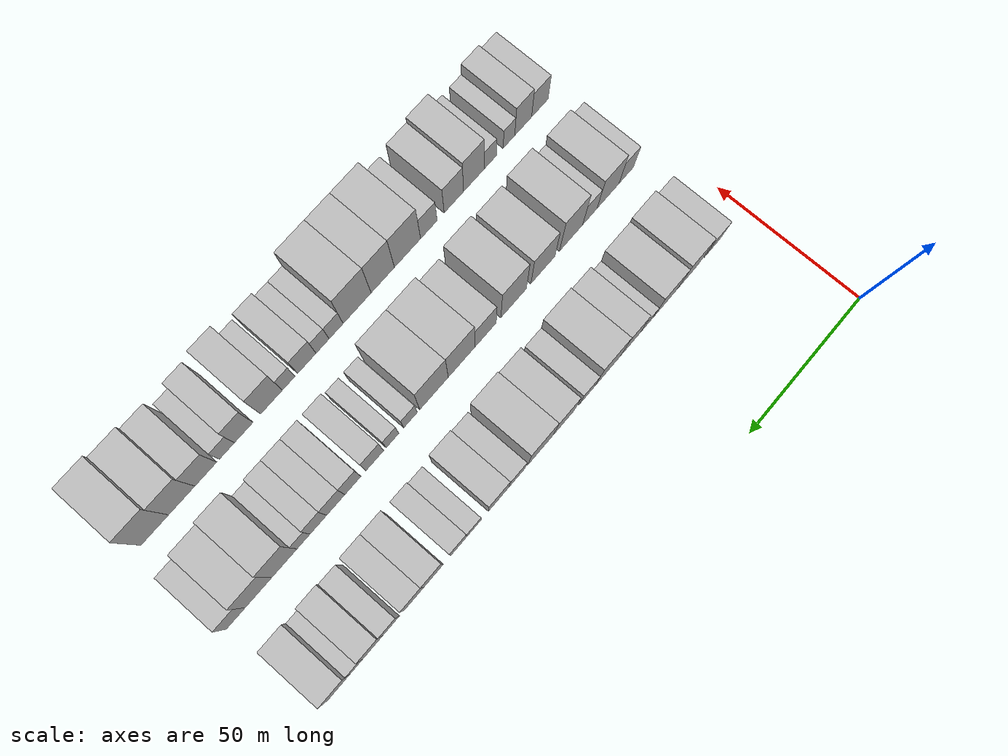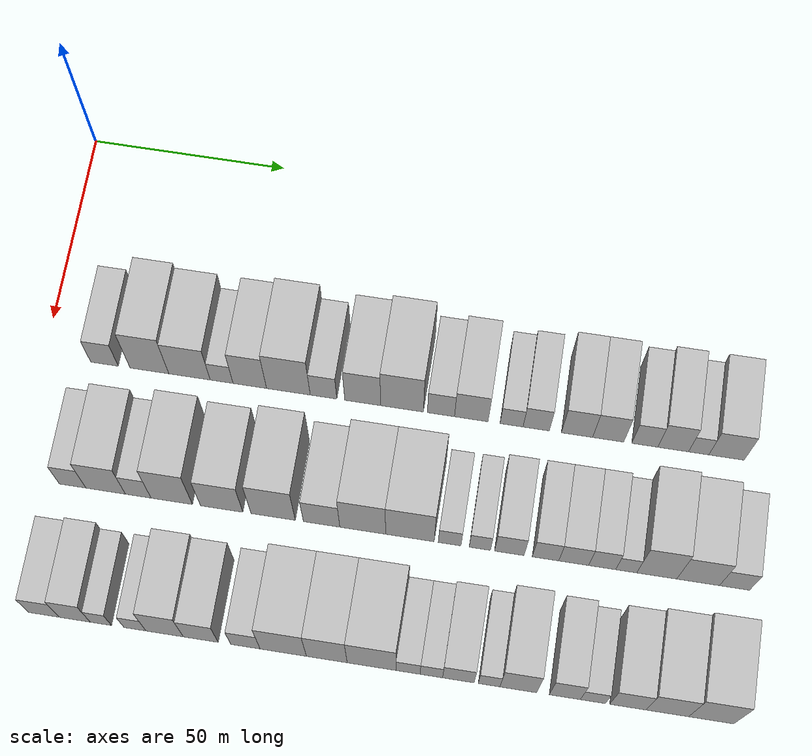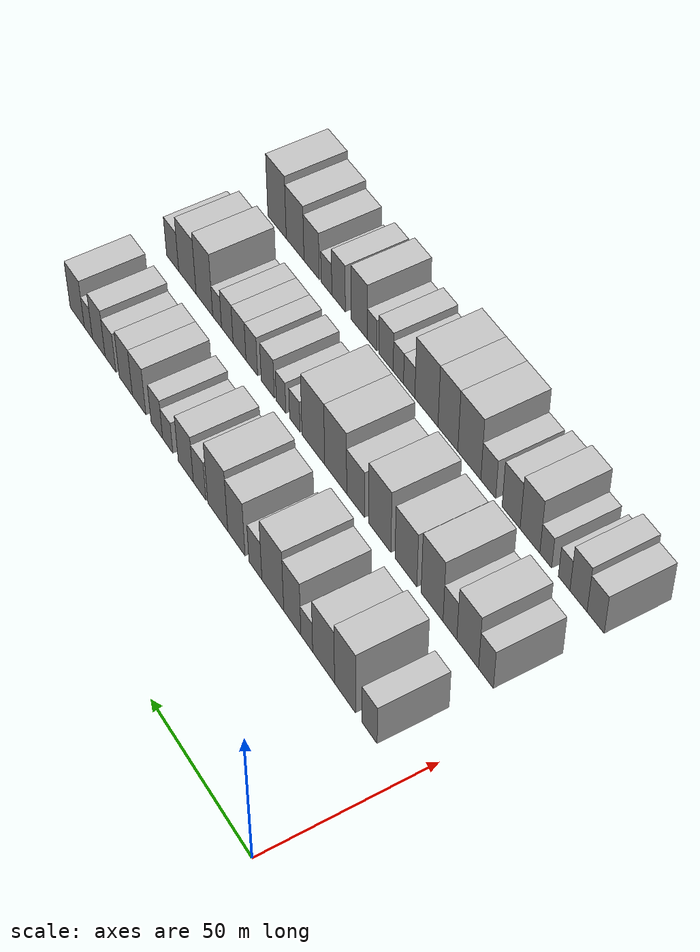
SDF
<sdf version="1.6">
 <world name="default">
  <model name="building_39">
   <static>1</static>
   <pose>50.0000 15.2704 0 0.000000 0.000000 0.000000</pose>
   <link name="link">
    <pose>0 0 7.50 0 0 0</pose>
    <collision name="collision"><geometry><box><size>20.0000 7.0027 15.0000</size></box></geometry></collision>
    <visual name="visual">
     <cast_shadows>0</cast_shadows>
     <geometry><box><size>20.0000 7.0027 15.0000</size></box></geometry>
     <material>
      <script>
       <uri>model://HANNAS_wall/materials/scripts</uri>
       <uri>model://HANNAS_wall/materials/textures</uri>
       <name>vrc/HANNAS_wall</name>
      </script>
     </material>
    </visual>
   </link>
  </model>
  <model name="building_40">
   <static>1</static>
   <pose>50.0000 26.6961 0 0.000000 0.000000 0.000000</pose>
   <link name="link">
    <pose>0 0 12.00 0 0 0</pose>
    <collision name="collision"><geometry><box><size>20.0000 9.8487 24.0000</size></box></geometry></collision>
    <visual name="visual">
     <cast_shadows>0</cast_shadows>
     <geometry><box><size>20.0000 9.8487 24.0000</size></box></geometry>
     <material>
      <script>
       <uri>model://HANNAS_wall/materials/scripts</uri>
       <uri>model://HANNAS_wall/materials/textures</uri>
       <name>vrc/HANNAS_wall</name>
      </script>
     </material>
    </visual>
   </link>
  </model>
  <model name="building_41">
   <static>1</static>
   <pose>50.0000 36.8690 0 0.000000 0.000000 0.000000</pose>
   <link name="link">
    <pose>0 0 10.50 0 0 0</pose>
    <collision name="collision"><geometry><box><size>20.0000 10.4971 21.0000</size></box></geometry></collision>
    <visual name="visual">
     <cast_shadows>0</cast_shadows>
     <geometry><box><size>20.0000 10.4971 21.0000</size></box></geometry>
     <material>
      <script>
       <uri>model://HANNAS_wall/materials/scripts</uri>
       <uri>model://HANNAS_wall/materials/textures</uri>
       <name>vrc/HANNAS_wall</name>
      </script>
     </material>
    </visual>
   </link>
  </model>
  <model name="building_42">
   <static>1</static>
   <pose>50.0000 45.0022 0 0.000000 0.000000 0.000000</pose>
   <link name="link">
    <pose>0 0 6.00 0 0 0</pose>
    <collision name="collision"><geometry><box><size>20.0000 5.7693 12.0000</size></box></geometry></collision>
    <visual name="visual">
     <cast_shadows>0</cast_shadows>
     <geometry><box><size>20.0000 5.7693 12.0000</size></box></geometry>
     <material>
      <script>
       <uri>model://HANNAS_wall/materials/scripts</uri>
       <uri>model://HANNAS_wall/materials/textures</uri>
       <name>vrc/HANNAS_wall</name>
      </script>
     </material>
    </visual>
   </link>
  </model>
  <model name="building_43">
   <static>1</static>
   <pose>50.0000 52.1193 0 0.000000 0.000000 0.000000</pose>
   <link name="link">
    <pose>0 0 10.50 0 0 0</pose>
    <collision name="collision"><geometry><box><size>20.0000 8.4649 21.0000</size></box></geometry></collision>
    <visual name="visual">
     <cast_shadows>0</cast_shadows>
     <geometry><box><size>20.0000 8.4649 21.0000</size></box></geometry>
     <material>
      <script>
       <uri>model://HANNAS_wall/materials/scripts</uri>
       <uri>model://HANNAS_wall/materials/textures</uri>
       <name>vrc/HANNAS_wall</name>
      </script>
     </material>
    </visual>
   </link>
  </model>
  <model name="building_44">
   <static>1</static>
   <pose>50.0000 61.8572 0 0.000000 0.000000 0.000000</pose>
   <link name="link">
    <pose>0 0 12.00 0 0 0</pose>
    <collision name="collision"><geometry><box><size>20.0000 11.0109 24.0000</size></box></geometry></collision>
    <visual name="visual">
     <cast_shadows>0</cast_shadows>
     <geometry><box><size>20.0000 11.0109 24.0000</size></box></geometry>
     <material>
      <script>
       <uri>model://HANNAS_wall/materials/scripts</uri>
       <uri>model://HANNAS_wall/materials/textures</uri>
       <name>vrc/HANNAS_wall</name>
      </script>
     </material>
    </visual>
   </link>
  </model>
  <model name="building_45">
   <static>1</static>
   <pose>50.0000 70.7023 0 0.000000 0.000000 0.000000</pose>
   <link name="link">
    <pose>0 0 7.50 0 0 0</pose>
    <collision name="collision"><geometry><box><size>20.0000 6.6793 15.0000</size></box></geometry></collision>
    <visual name="visual">
     <cast_shadows>0</cast_shadows>
     <geometry><box><size>20.0000 6.6793 15.0000</size></box></geometry>
     <material>
      <script>
       <uri>model://HANNAS_wall/materials/scripts</uri>
       <uri>model://HANNAS_wall/materials/textures</uri>
       <name>vrc/HANNAS_wall</name>
      </script>
     </material>
    </visual>
   </link>
  </model>
  <model name="building_46">
   <static>1</static>
   <pose>50.0000 80.5464 0 0.000000 0.000000 0.000000</pose>
   <link name="link">
    <pose>0 0 10.50 0 0 0</pose>
    <collision name="collision"><geometry><box><size>20.0000 9.0089 21.0000</size></box></geometry></collision>
    <visual name="visual">
     <cast_shadows>0</cast_shadows>
     <geometry><box><size>20.0000 9.0089 21.0000</size></box></geometry>
     <material>
      <script>
       <uri>model://HANNAS_wall/materials/scripts</uri>
       <uri>model://HANNAS_wall/materials/textures</uri>
       <name>vrc/HANNAS_wall</name>
      </script>
     </material>
    </visual>
   </link>
  </model>
  <model name="building_47">
   <static>1</static>
   <pose>50.0000 90.3913 0 0.000000 0.000000 0.000000</pose>
   <link name="link">
    <pose>0 0 12.00 0 0 0</pose>
    <collision name="collision"><geometry><box><size>20.0000 10.6811 24.0000</size></box></geometry></collision>
    <visual name="visual">
     <cast_shadows>0</cast_shadows>
     <geometry><box><size>20.0000 10.6811 24.0000</size></box></geometry>
     <material>
      <script>
       <uri>model://HANNAS_wall/materials/scripts</uri>
       <uri>model://HANNAS_wall/materials/textures</uri>
       <name>vrc/HANNAS_wall</name>
      </script>
     </material>
    </visual>
   </link>
  </model>
  <model name="building_48">
   <static>1</static>
   <pose>50.0000 100.1122 0 0.000000 0.000000 0.000000</pose>
   <link name="link">
    <pose>0 0 7.50 0 0 0</pose>
    <collision name="collision"><geometry><box><size>20.0000 6.7606 15.0000</size></box></geometry></collision>
    <visual name="visual">
     <cast_shadows>0</cast_shadows>
     <geometry><box><size>20.0000 6.7606 15.0000</size></box></geometry>
     <material>
      <script>
       <uri>model://HANNAS_wall/materials/scripts</uri>
       <uri>model://HANNAS_wall/materials/textures</uri>
       <name>vrc/HANNAS_wall</name>
      </script>
     </material>
    </visual>
   </link>
  </model>
  <model name="building_49">
   <static>1</static>
   <pose>50.0000 107.6682 0 0.000000 0.000000 0.000000</pose>
   <link name="link">
    <pose>0 0 9.00 0 0 0</pose>
    <collision name="collision"><geometry><box><size>20.0000 8.3515 18.0000</size></box></geometry></collision>
    <visual name="visual">
     <cast_shadows>0</cast_shadows>
     <geometry><box><size>20.0000 8.3515 18.0000</size></box></geometry>
     <material>
      <script>
       <uri>model://HANNAS_wall/materials/scripts</uri>
       <uri>model://HANNAS_wall/materials/textures</uri>
       <name>vrc/HANNAS_wall</name>
      </script>
     </material>
    </visual>
   </link>
  </model>
  <model name="building_50">
   <static>1</static>
   <pose>50.0000 117.6989 0 0.000000 0.000000 0.000000</pose>
   <link name="link">
    <pose>0 0 6.00 0 0 0</pose>
    <collision name="collision"><geometry><box><size>20.0000 5.7099 12.0000</size></box></geometry></collision>
    <visual name="visual">
     <cast_shadows>0</cast_shadows>
     <geometry><box><size>20.0000 5.7099 12.0000</size></box></geometry>
     <material>
      <script>
       <uri>model://HANNAS_wall/materials/scripts</uri>
       <uri>model://HANNAS_wall/materials/textures</uri>
       <name>vrc/HANNAS_wall</name>
      </script>
     </material>
    </visual>
   </link>
  </model>
  <model name="building_51">
   <static>1</static>
   <pose>50.0000 123.8162 0 0.000000 0.000000 0.000000</pose>
   <link name="link">
    <pose>0 0 7.50 0 0 0</pose>
    <collision name="collision"><geometry><box><size>20.0000 6.5247 15.0000</size></box></geometry></collision>
    <visual name="visual">
     <cast_shadows>0</cast_shadows>
     <geometry><box><size>20.0000 6.5247 15.0000</size></box></geometry>
     <material>
      <script>
       <uri>model://HANNAS_wall/materials/scripts</uri>
       <uri>model://HANNAS_wall/materials/textures</uri>
       <name>vrc/HANNAS_wall</name>
      </script>
     </material>
    </visual>
   </link>
  </model>
  <model name="building_52">
   <static>1</static>
   <pose>50.0000 133.9477 0 0.000000 0.000000 0.000000</pose>
   <link name="link">
    <pose>0 0 9.00 0 0 0</pose>
    <collision name="collision"><geometry><box><size>20.0000 7.7381 18.0000</size></box></geometry></collision>
    <visual name="visual">
     <cast_shadows>0</cast_shadows>
     <geometry><box><size>20.0000 7.7381 18.0000</size></box></geometry>
     <material>
      <script>
       <uri>model://HANNAS_wall/materials/scripts</uri>
       <uri>model://HANNAS_wall/materials/textures</uri>
       <name>vrc/HANNAS_wall</name>
      </script>
     </material>
    </visual>
   </link>
  </model>
  <model name="building_53">
   <static>1</static>
   <pose>50.0000 141.6586 0 0.000000 0.000000 0.000000</pose>
   <link name="link">
    <pose>0 0 9.00 0 0 0</pose>
    <collision name="collision"><geometry><box><size>20.0000 7.6837 18.0000</size></box></geometry></collision>
    <visual name="visual">
     <cast_shadows>0</cast_shadows>
     <geometry><box><size>20.0000 7.6837 18.0000</size></box></geometry>
     <material>
      <script>
       <uri>model://HANNAS_wall/materials/scripts</uri>
       <uri>model://HANNAS_wall/materials/textures</uri>
       <name>vrc/HANNAS_wall</name>
      </script>
     </material>
    </visual>
   </link>
  </model>
  <model name="building_54">
   <static>1</static>
   <pose>50.0000 150.6986 0 0.000000 0.000000 0.000000</pose>
   <link name="link">
    <pose>0 0 7.50 0 0 0</pose>
    <collision name="collision"><geometry><box><size>20.0000 6.3965 15.0000</size></box></geometry></collision>
    <visual name="visual">
     <cast_shadows>0</cast_shadows>
     <geometry><box><size>20.0000 6.3965 15.0000</size></box></geometry>
     <material>
      <script>
       <uri>model://HANNAS_wall/materials/scripts</uri>
       <uri>model://HANNAS_wall/materials/textures</uri>
       <name>vrc/HANNAS_wall</name>
      </script>
     </material>
    </visual>
   </link>
  </model>
  <model name="building_55">
   <static>1</static>
   <pose>50.0000 157.6877 0 0.000000 0.000000 0.000000</pose>
   <link name="link">
    <pose>0 0 9.00 0 0 0</pose>
    <collision name="collision"><geometry><box><size>20.0000 7.5816 18.0000</size></box></geometry></collision>
    <visual name="visual">
     <cast_shadows>0</cast_shadows>
     <geometry><box><size>20.0000 7.5816 18.0000</size></box></geometry>
     <material>
      <script>
       <uri>model://HANNAS_wall/materials/scripts</uri>
       <uri>model://HANNAS_wall/materials/textures</uri>
       <name>vrc/HANNAS_wall</name>
      </script>
     </material>
    </visual>
   </link>
  </model>
  <model name="building_56">
   <static>1</static>
   <pose>50.0000 163.9735 0 0.000000 0.000000 0.000000</pose>
   <link name="link">
    <pose>0 0 6.00 0 0 0</pose>
    <collision name="collision"><geometry><box><size>20.0000 4.9901 12.0000</size></box></geometry></collision>
    <visual name="visual">
     <cast_shadows>0</cast_shadows>
     <geometry><box><size>20.0000 4.9901 12.0000</size></box></geometry>
     <material>
      <script>
       <uri>model://HANNAS_wall/materials/scripts</uri>
       <uri>model://HANNAS_wall/materials/textures</uri>
       <name>vrc/HANNAS_wall</name>
      </script>
     </material>
    </visual>
   </link>
  </model>
  <model name="building_57">
   <static>1</static>
   <pose>50.0000 170.8108 0 0.000000 0.000000 0.000000</pose>
   <link name="link">
    <pose>0 0 9.00 0 0 0</pose>
    <collision name="collision"><geometry><box><size>20.0000 8.6844 18.0000</size></box></geometry></collision>
    <visual name="visual">
     <cast_shadows>0</cast_shadows>
     <geometry><box><size>20.0000 8.6844 18.0000</size></box></geometry>
     <material>
      <script>
       <uri>model://HANNAS_wall/materials/scripts</uri>
       <uri>model://HANNAS_wall/materials/textures</uri>
       <name>vrc/HANNAS_wall</name>
      </script>
     </material>
    </visual>
   </link>
  </model>
  <model name="building_111">
   <static>1</static>
   <pose>82.0000 14.2327 0 0.000000 0.000000 0.000000</pose>
   <link name="link">
    <pose>0 0 7.50 0 0 0</pose>
    <collision name="collision"><geometry><box><size>20.0000 6.5961 15.0000</size></box></geometry></collision>
    <visual name="visual">
     <cast_shadows>0</cast_shadows>
     <geometry><box><size>20.0000 6.5961 15.0000</size></box></geometry>
     <material>
      <script>
       <uri>model://HANNAS_wall/materials/scripts</uri>
       <uri>model://HANNAS_wall/materials/textures</uri>
       <name>vrc/HANNAS_wall</name>
      </script>
     </material>
    </visual>
   </link>
  </model>
  <model name="building_112">
   <static>1</static>
   <pose>82.0000 22.4456 0 0.000000 0.000000 0.000000</pose>
   <link name="link">
    <pose>0 0 10.50 0 0 0</pose>
    <collision name="collision"><geometry><box><size>20.0000 9.8298 21.0000</size></box></geometry></collision>
    <visual name="visual">
     <cast_shadows>0</cast_shadows>
     <geometry><box><size>20.0000 9.8298 21.0000</size></box></geometry>
     <material>
      <script>
       <uri>model://HANNAS_wall/materials/scripts</uri>
       <uri>model://HANNAS_wall/materials/textures</uri>
       <name>vrc/HANNAS_wall</name>
      </script>
     </material>
    </visual>
   </link>
  </model>
  <model name="building_113">
   <static>1</static>
   <pose>82.0000 30.5414 0 0.000000 0.000000 0.000000</pose>
   <link name="link">
    <pose>0 0 7.50 0 0 0</pose>
    <collision name="collision"><geometry><box><size>20.0000 6.3617 15.0000</size></box></geometry></collision>
    <visual name="visual">
     <cast_shadows>0</cast_shadows>
     <geometry><box><size>20.0000 6.3617 15.0000</size></box></geometry>
     <material>
      <script>
       <uri>model://HANNAS_wall/materials/scripts</uri>
       <uri>model://HANNAS_wall/materials/textures</uri>
       <name>vrc/HANNAS_wall</name>
      </script>
     </material>
    </visual>
   </link>
  </model>
  <model name="building_114">
   <static>1</static>
   <pose>82.0000 38.8368 0 0.000000 0.000000 0.000000</pose>
   <link name="link">
    <pose>0 0 12.00 0 0 0</pose>
    <collision name="collision"><geometry><box><size>20.0000 10.2292 24.0000</size></box></geometry></collision>
    <visual name="visual">
     <cast_shadows>0</cast_shadows>
     <geometry><box><size>20.0000 10.2292 24.0000</size></box></geometry>
     <material>
      <script>
       <uri>model://HANNAS_wall/materials/scripts</uri>
       <uri>model://HANNAS_wall/materials/textures</uri>
       <name>vrc/HANNAS_wall</name>
      </script>
     </material>
    </visual>
   </link>
  </model>
  <model name="building_115">
   <static>1</static>
   <pose>82.0000 51.1650 0 0.000000 0.000000 0.000000</pose>
   <link name="link">
    <pose>0 0 10.50 0 0 0</pose>
    <collision name="collision"><geometry><box><size>20.0000 10.4272 21.0000</size></box></geometry></collision>
    <visual name="visual">
     <cast_shadows>0</cast_shadows>
     <geometry><box><size>20.0000 10.4272 21.0000</size></box></geometry>
     <material>
      <script>
       <uri>model://HANNAS_wall/materials/scripts</uri>
       <uri>model://HANNAS_wall/materials/textures</uri>
       <name>vrc/HANNAS_wall</name>
      </script>
     </material>
    </visual>
   </link>
  </model>
  <model name="building_116">
   <static>1</static>
   <pose>82.0000 63.8322 0 0.000000 0.000000 0.000000</pose>
   <link name="link">
    <pose>0 0 12.00 0 0 0</pose>
    <collision name="collision"><geometry><box><size>20.0000 10.9073 24.0000</size></box></geometry></collision>
    <visual name="visual">
     <cast_shadows>0</cast_shadows>
     <geometry><box><size>20.0000 10.9073 24.0000</size></box></geometry>
     <material>
      <script>
       <uri>model://HANNAS_wall/materials/scripts</uri>
       <uri>model://HANNAS_wall/materials/textures</uri>
       <name>vrc/HANNAS_wall</name>
      </script>
     </material>
    </visual>
   </link>
  </model>
  <model name="building_117">
   <static>1</static>
   <pose>82.0000 75.7456 0 0.000000 0.000000 0.000000</pose>
   <link name="link">
    <pose>0 0 9.00 0 0 0</pose>
    <collision name="collision"><geometry><box><size>20.0000 8.9196 18.0000</size></box></geometry></collision>
    <visual name="visual">
     <cast_shadows>0</cast_shadows>
     <geometry><box><size>20.0000 8.9196 18.0000</size></box></geometry>
     <material>
      <script>
       <uri>model://HANNAS_wall/materials/scripts</uri>
       <uri>model://HANNAS_wall/materials/textures</uri>
       <name>vrc/HANNAS_wall</name>
      </script>
     </material>
    </visual>
   </link>
  </model>
  <model name="building_118">
   <static>1</static>
   <pose>82.0000 85.8095 0 0.000000 0.000000 0.000000</pose>
   <link name="link">
    <pose>0 0 12.00 0 0 0</pose>
    <collision name="collision"><geometry><box><size>20.0000 11.2081 24.0000</size></box></geometry></collision>
    <visual name="visual">
     <cast_shadows>0</cast_shadows>
     <geometry><box><size>20.0000 11.2081 24.0000</size></box></geometry>
     <material>
      <script>
       <uri>model://HANNAS_wall/materials/scripts</uri>
       <uri>model://HANNAS_wall/materials/textures</uri>
       <name>vrc/HANNAS_wall</name>
      </script>
     </material>
    </visual>
   </link>
  </model>
  <model name="building_119">
   <static>1</static>
   <pose>82.0000 97.3224 0 0.000000 0.000000 0.000000</pose>
   <link name="link">
    <pose>0 0 12.00 0 0 0</pose>
    <collision name="collision"><geometry><box><size>20.0000 11.8177 24.0000</size></box></geometry></collision>
    <visual name="visual">
     <cast_shadows>0</cast_shadows>
     <geometry><box><size>20.0000 11.8177 24.0000</size></box></geometry>
     <material>
      <script>
       <uri>model://HANNAS_wall/materials/scripts</uri>
       <uri>model://HANNAS_wall/materials/textures</uri>
       <name>vrc/HANNAS_wall</name>
      </script>
     </material>
    </visual>
   </link>
  </model>
  <model name="building_120">
   <static>1</static>
   <pose>82.0000 106.9991 0 0.000000 0.000000 0.000000</pose>
   <link name="link">
    <pose>0 0 6.00 0 0 0</pose>
    <collision name="collision"><geometry><box><size>20.0000 5.5358 12.0000</size></box></geometry></collision>
    <visual name="visual">
     <cast_shadows>0</cast_shadows>
     <geometry><box><size>20.0000 5.5358 12.0000</size></box></geometry>
     <material>
      <script>
       <uri>model://HANNAS_wall/materials/scripts</uri>
       <uri>model://HANNAS_wall/materials/textures</uri>
       <name>vrc/HANNAS_wall</name>
      </script>
     </material>
    </visual>
   </link>
  </model>
  <model name="building_121">
   <static>1</static>
   <pose>82.0000 114.3417 0 0.000000 0.000000 0.000000</pose>
   <link name="link">
    <pose>0 0 6.00 0 0 0</pose>
    <collision name="collision"><geometry><box><size>20.0000 5.1492 12.0000</size></box></geometry></collision>
    <visual name="visual">
     <cast_shadows>0</cast_shadows>
     <geometry><box><size>20.0000 5.1492 12.0000</size></box></geometry>
     <material>
      <script>
       <uri>model://HANNAS_wall/materials/scripts</uri>
       <uri>model://HANNAS_wall/materials/textures</uri>
       <name>vrc/HANNAS_wall</name>
      </script>
     </material>
    </visual>
   </link>
  </model>
  <model name="building_122">
   <static>1</static>
   <pose>82.0000 121.4871 0 0.000000 0.000000 0.000000</pose>
   <link name="link">
    <pose>0 0 7.50 0 0 0</pose>
    <collision name="collision"><geometry><box><size>20.0000 7.1417 15.0000</size></box></geometry></collision>
    <visual name="visual">
     <cast_shadows>0</cast_shadows>
     <geometry><box><size>20.0000 7.1417 15.0000</size></box></geometry>
     <material>
      <script>
       <uri>model://HANNAS_wall/materials/scripts</uri>
       <uri>model://HANNAS_wall/materials/textures</uri>
       <name>vrc/HANNAS_wall</name>
      </script>
     </material>
    </visual>
   </link>
  </model>
  <model name="building_123">
   <static>1</static>
   <pose>82.0000 130.2638 0 0.000000 0.000000 0.000000</pose>
   <link name="link">
    <pose>0 0 7.50 0 0 0</pose>
    <collision name="collision"><geometry><box><size>20.0000 6.4117 15.0000</size></box></geometry></collision>
    <visual name="visual">
     <cast_shadows>0</cast_shadows>
     <geometry><box><size>20.0000 6.4117 15.0000</size></box></geometry>
     <material>
      <script>
       <uri>model://HANNAS_wall/materials/scripts</uri>
       <uri>model://HANNAS_wall/materials/textures</uri>
       <name>vrc/HANNAS_wall</name>
      </script>
     </material>
    </visual>
   </link>
  </model>
  <model name="building_124">
   <static>1</static>
   <pose>82.0000 137.0788 0 0.000000 0.000000 0.000000</pose>
   <link name="link">
    <pose>0 0 7.50 0 0 0</pose>
    <collision name="collision"><geometry><box><size>20.0000 7.2183 15.0000</size></box></geometry></collision>
    <visual name="visual">
     <cast_shadows>0</cast_shadows>
     <geometry><box><size>20.0000 7.2183 15.0000</size></box></geometry>
     <material>
      <script>
       <uri>model://HANNAS_wall/materials/scripts</uri>
       <uri>model://HANNAS_wall/materials/textures</uri>
       <name>vrc/HANNAS_wall</name>
      </script>
     </material>
    </visual>
   </link>
  </model>
  <model name="building_125">
   <static>1</static>
   <pose>82.0000 143.9448 0 0.000000 0.000000 0.000000</pose>
   <link name="link">
    <pose>0 0 7.50 0 0 0</pose>
    <collision name="collision"><geometry><box><size>20.0000 6.5137 15.0000</size></box></geometry></collision>
    <visual name="visual">
     <cast_shadows>0</cast_shadows>
     <geometry><box><size>20.0000 6.5137 15.0000</size></box></geometry>
     <material>
      <script>
       <uri>model://HANNAS_wall/materials/scripts</uri>
       <uri>model://HANNAS_wall/materials/textures</uri>
       <name>vrc/HANNAS_wall</name>
      </script>
     </material>
    </visual>
   </link>
  </model>
  <model name="building_126">
   <static>1</static>
   <pose>82.0000 149.7322 0 0.000000 0.000000 0.000000</pose>
   <link name="link">
    <pose>0 0 6.00 0 0 0</pose>
    <collision name="collision"><geometry><box><size>20.0000 5.0611 12.0000</size></box></geometry></collision>
    <visual name="visual">
     <cast_shadows>0</cast_shadows>
     <geometry><box><size>20.0000 5.0611 12.0000</size></box></geometry>
     <material>
      <script>
       <uri>model://HANNAS_wall/materials/scripts</uri>
       <uri>model://HANNAS_wall/materials/textures</uri>
       <name>vrc/HANNAS_wall</name>
      </script>
     </material>
    </visual>
   </link>
  </model>
  <model name="building_127">
   <static>1</static>
   <pose>82.0000 157.0781 0 0.000000 0.000000 0.000000</pose>
   <link name="link">
    <pose>0 0 12.00 0 0 0</pose>
    <collision name="collision"><geometry><box><size>20.0000 9.6307 24.0000</size></box></geometry></collision>
    <visual name="visual">
     <cast_shadows>0</cast_shadows>
     <geometry><box><size>20.0000 9.6307 24.0000</size></box></geometry>
     <material>
      <script>
       <uri>model://HANNAS_wall/materials/scripts</uri>
       <uri>model://HANNAS_wall/materials/textures</uri>
       <name>vrc/HANNAS_wall</name>
      </script>
     </material>
    </visual>
   </link>
  </model>
  <model name="building_128">
   <static>1</static>
   <pose>82.0000 167.0220 0 0.000000 0.000000 0.000000</pose>
   <link name="link">
    <pose>0 0 10.50 0 0 0</pose>
    <collision name="collision"><geometry><box><size>20.0000 10.2571 21.0000</size></box></geometry></collision>
    <visual name="visual">
     <cast_shadows>0</cast_shadows>
     <geometry><box><size>20.0000 10.2571 21.0000</size></box></geometry>
     <material>
      <script>
       <uri>model://HANNAS_wall/materials/scripts</uri>
       <uri>model://HANNAS_wall/materials/textures</uri>
       <name>vrc/HANNAS_wall</name>
      </script>
     </material>
    </visual>
   </link>
  </model>
  <model name="building_129">
   <static>1</static>
   <pose>82.0000 175.7598 0 0.000000 0.000000 0.000000</pose>
   <link name="link">
    <pose>0 0 7.50 0 0 0</pose>
    <collision name="collision"><geometry><box><size>20.0000 7.2185 15.0000</size></box></geometry></collision>
    <visual name="visual">
     <cast_shadows>0</cast_shadows>
     <geometry><box><size>20.0000 7.2185 15.0000</size></box></geometry>
     <material>
      <script>
       <uri>model://HANNAS_wall/materials/scripts</uri>
       <uri>model://HANNAS_wall/materials/textures</uri>
       <name>vrc/HANNAS_wall</name>
      </script>
     </material>
    </visual>
   </link>
  </model>
  <model name="building_191">
   <static>1</static>
   <pose>114.0000 14.3944 0 0.000000 0.000000 0.000000</pose>
   <link name="link">
    <pose>0 0 7.50 0 0 0</pose>
    <collision name="collision"><geometry><box><size>20.0000 7.4476 15.0000</size></box></geometry></collision>
    <visual name="visual">
     <cast_shadows>0</cast_shadows>
     <geometry><box><size>20.0000 7.4476 15.0000</size></box></geometry>
     <material>
      <script>
       <uri>model://HANNAS_wall/materials/scripts</uri>
       <uri>model://HANNAS_wall/materials/textures</uri>
       <name>vrc/HANNAS_wall</name>
      </script>
     </material>
    </visual>
   </link>
  </model>
  <model name="building_192">
   <static>1</static>
   <pose>114.0000 21.8720 0 0.000000 0.000000 0.000000</pose>
   <link name="link">
    <pose>0 0 9.00 0 0 0</pose>
    <collision name="collision"><geometry><box><size>20.0000 7.5077 18.0000</size></box></geometry></collision>
    <visual name="visual">
     <cast_shadows>0</cast_shadows>
     <geometry><box><size>20.0000 7.5077 18.0000</size></box></geometry>
     <material>
      <script>
       <uri>model://HANNAS_wall/materials/scripts</uri>
       <uri>model://HANNAS_wall/materials/textures</uri>
       <name>vrc/HANNAS_wall</name>
      </script>
     </material>
    </visual>
   </link>
  </model>
  <model name="building_193">
   <static>1</static>
   <pose>114.0000 28.1903 0 0.000000 0.000000 0.000000</pose>
   <link name="link">
    <pose>0 0 6.00 0 0 0</pose>
    <collision name="collision"><geometry><box><size>20.0000 5.1288 12.0000</size></box></geometry></collision>
    <visual name="visual">
     <cast_shadows>0</cast_shadows>
     <geometry><box><size>20.0000 5.1288 12.0000</size></box></geometry>
     <material>
      <script>
       <uri>model://HANNAS_wall/materials/scripts</uri>
       <uri>model://HANNAS_wall/materials/textures</uri>
       <name>vrc/HANNAS_wall</name>
      </script>
     </material>
    </visual>
   </link>
  </model>
  <model name="building_194">
   <static>1</static>
   <pose>114.0000 36.4213 0 0.000000 0.000000 0.000000</pose>
   <link name="link">
    <pose>0 0 6.00 0 0 0</pose>
    <collision name="collision"><geometry><box><size>20.0000 5.3332 12.0000</size></box></geometry></collision>
    <visual name="visual">
     <cast_shadows>0</cast_shadows>
     <geometry><box><size>20.0000 5.3332 12.0000</size></box></geometry>
     <material>
      <script>
       <uri>model://HANNAS_wall/materials/scripts</uri>
       <uri>model://HANNAS_wall/materials/textures</uri>
       <name>vrc/HANNAS_wall</name>
      </script>
     </material>
    </visual>
   </link>
  </model>
  <model name="building_195">
   <static>1</static>
   <pose>114.0000 43.5938 0 0.000000 0.000000 0.000000</pose>
   <link name="link">
    <pose>0 0 10.50 0 0 0</pose>
    <collision name="collision"><geometry><box><size>20.0000 9.0118 21.0000</size></box></geometry></collision>
    <visual name="visual">
     <cast_shadows>0</cast_shadows>
     <geometry><box><size>20.0000 9.0118 21.0000</size></box></geometry>
     <material>
      <script>
       <uri>model://HANNAS_wall/materials/scripts</uri>
       <uri>model://HANNAS_wall/materials/textures</uri>
       <name>vrc/HANNAS_wall</name>
      </script>
     </material>
    </visual>
   </link>
  </model>
  <model name="building_196">
   <static>1</static>
   <pose>114.0000 52.2963 0 0.000000 0.000000 0.000000</pose>
   <link name="link">
    <pose>0 0 9.00 0 0 0</pose>
    <collision name="collision"><geometry><box><size>20.0000 8.3932 18.0000</size></box></geometry></collision>
    <visual name="visual">
     <cast_shadows>0</cast_shadows>
     <geometry><box><size>20.0000 8.3932 18.0000</size></box></geometry>
     <material>
      <script>
       <uri>model://HANNAS_wall/materials/scripts</uri>
       <uri>model://HANNAS_wall/materials/textures</uri>
       <name>vrc/HANNAS_wall</name>
      </script>
     </material>
    </visual>
   </link>
  </model>
  <model name="building_197">
   <static>1</static>
   <pose>114.0000 63.0161 0 0.000000 0.000000 0.000000</pose>
   <link name="link">
    <pose>0 0 7.50 0 0 0</pose>
    <collision name="collision"><geometry><box><size>20.0000 7.0463 15.0000</size></box></geometry></collision>
    <visual name="visual">
     <cast_shadows>0</cast_shadows>
     <geometry><box><size>20.0000 7.0463 15.0000</size></box></geometry>
     <material>
      <script>
       <uri>model://HANNAS_wall/materials/scripts</uri>
       <uri>model://HANNAS_wall/materials/textures</uri>
       <name>vrc/HANNAS_wall</name>
      </script>
     </material>
    </visual>
   </link>
  </model>
  <model name="building_198">
   <static>1</static>
   <pose>114.0000 72.0885 0 0.000000 0.000000 0.000000</pose>
   <link name="link">
    <pose>0 0 12.00 0 0 0</pose>
    <collision name="collision"><geometry><box><size>20.0000 11.0986 24.0000</size></box></geometry></collision>
    <visual name="visual">
     <cast_shadows>0</cast_shadows>
     <geometry><box><size>20.0000 11.0986 24.0000</size></box></geometry>
     <material>
      <script>
       <uri>model://HANNAS_wall/materials/scripts</uri>
       <uri>model://HANNAS_wall/materials/textures</uri>
       <name>vrc/HANNAS_wall</name>
      </script>
     </material>
    </visual>
   </link>
  </model>
  <model name="building_199">
   <static>1</static>
   <pose>114.0000 82.5052 0 0.000000 0.000000 0.000000</pose>
   <link name="link">
    <pose>0 0 12.00 0 0 0</pose>
    <collision name="collision"><geometry><box><size>20.0000 9.7348 24.0000</size></box></geometry></collision>
    <visual name="visual">
     <cast_shadows>0</cast_shadows>
     <geometry><box><size>20.0000 9.7348 24.0000</size></box></geometry>
     <material>
      <script>
       <uri>model://HANNAS_wall/materials/scripts</uri>
       <uri>model://HANNAS_wall/materials/textures</uri>
       <name>vrc/HANNAS_wall</name>
      </script>
     </material>
    </visual>
   </link>
  </model>
  <model name="building_200">
   <static>1</static>
   <pose>114.0000 93.1712 0 0.000000 0.000000 0.000000</pose>
   <link name="link">
    <pose>0 0 12.00 0 0 0</pose>
    <collision name="collision"><geometry><box><size>20.0000 11.5972 24.0000</size></box></geometry></collision>
    <visual name="visual">
     <cast_shadows>0</cast_shadows>
     <geometry><box><size>20.0000 11.5972 24.0000</size></box></geometry>
     <material>
      <script>
       <uri>model://HANNAS_wall/materials/scripts</uri>
       <uri>model://HANNAS_wall/materials/textures</uri>
       <name>vrc/HANNAS_wall</name>
      </script>
     </material>
    </visual>
   </link>
  </model>
  <model name="building_201">
   <static>1</static>
   <pose>114.0000 101.8490 0 0.000000 0.000000 0.000000</pose>
   <link name="link">
    <pose>0 0 6.00 0 0 0</pose>
    <collision name="collision"><geometry><box><size>20.0000 5.7586 12.0000</size></box></geometry></collision>
    <visual name="visual">
     <cast_shadows>0</cast_shadows>
     <geometry><box><size>20.0000 5.7586 12.0000</size></box></geometry>
     <material>
      <script>
       <uri>model://HANNAS_wall/materials/scripts</uri>
       <uri>model://HANNAS_wall/materials/textures</uri>
       <name>vrc/HANNAS_wall</name>
      </script>
     </material>
    </visual>
   </link>
  </model>
  <model name="building_202">
   <static>1</static>
   <pose>114.0000 107.3828 0 0.000000 0.000000 0.000000</pose>
   <link name="link">
    <pose>0 0 6.00 0 0 0</pose>
    <collision name="collision"><geometry><box><size>20.0000 5.3090 12.0000</size></box></geometry></collision>
    <visual name="visual">
     <cast_shadows>0</cast_shadows>
     <geometry><box><size>20.0000 5.3090 12.0000</size></box></geometry>
     <material>
      <script>
       <uri>model://HANNAS_wall/materials/scripts</uri>
       <uri>model://HANNAS_wall/materials/textures</uri>
       <name>vrc/HANNAS_wall</name>
      </script>
     </material>
    </visual>
   </link>
  </model>
  <model name="building_203">
   <static>1</static>
   <pose>114.0000 113.7713 0 0.000000 0.000000 0.000000</pose>
   <link name="link">
    <pose>0 0 7.50 0 0 0</pose>
    <collision name="collision"><geometry><box><size>20.0000 7.4679 15.0000</size></box></geometry></collision>
    <visual name="visual">
     <cast_shadows>0</cast_shadows>
     <geometry><box><size>20.0000 7.4679 15.0000</size></box></geometry>
     <material>
      <script>
       <uri>model://HANNAS_wall/materials/scripts</uri>
       <uri>model://HANNAS_wall/materials/textures</uri>
       <name>vrc/HANNAS_wall</name>
      </script>
     </material>
    </visual>
   </link>
  </model>
  <model name="building_204">
   <static>1</static>
   <pose>114.0000 121.0565 0 0.000000 0.000000 0.000000</pose>
   <link name="link">
    <pose>0 0 6.00 0 0 0</pose>
    <collision name="collision"><geometry><box><size>20.0000 5.1024 12.0000</size></box></geometry></collision>
    <visual name="visual">
     <cast_shadows>0</cast_shadows>
     <geometry><box><size>20.0000 5.1024 12.0000</size></box></geometry>
     <material>
      <script>
       <uri>model://HANNAS_wall/materials/scripts</uri>
       <uri>model://HANNAS_wall/materials/textures</uri>
       <name>vrc/HANNAS_wall</name>
      </script>
     </material>
    </visual>
   </link>
  </model>
  <model name="building_205">
   <static>1</static>
   <pose>114.0000 127.9461 0 0.000000 0.000000 0.000000</pose>
   <link name="link">
    <pose>0 0 10.50 0 0 0</pose>
    <collision name="collision"><geometry><box><size>20.0000 8.6769 21.0000</size></box></geometry></collision>
    <visual name="visual">
     <cast_shadows>0</cast_shadows>
     <geometry><box><size>20.0000 8.6769 21.0000</size></box></geometry>
     <material>
      <script>
       <uri>model://HANNAS_wall/materials/scripts</uri>
       <uri>model://HANNAS_wall/materials/textures</uri>
       <name>vrc/HANNAS_wall</name>
      </script>
     </material>
    </visual>
   </link>
  </model>
  <model name="building_206">
   <static>1</static>
   <pose>114.0000 138.9385 0 0.000000 0.000000 0.000000</pose>
   <link name="link">
    <pose>0 0 9.00 0 0 0</pose>
    <collision name="collision"><geometry><box><size>20.0000 7.3080 18.0000</size></box></geometry></collision>
    <visual name="visual">
     <cast_shadows>0</cast_shadows>
     <geometry><box><size>20.0000 7.3080 18.0000</size></box></geometry>
     <material>
      <script>
       <uri>model://HANNAS_wall/materials/scripts</uri>
       <uri>model://HANNAS_wall/materials/textures</uri>
       <name>vrc/HANNAS_wall</name>
      </script>
     </material>
    </visual>
   </link>
  </model>
  <model name="building_207">
   <static>1</static>
   <pose>114.0000 145.5430 0 0.000000 0.000000 0.000000</pose>
   <link name="link">
    <pose>0 0 6.00 0 0 0</pose>
    <collision name="collision"><geometry><box><size>20.0000 5.9010 12.0000</size></box></geometry></collision>
    <visual name="visual">
     <cast_shadows>0</cast_shadows>
     <geometry><box><size>20.0000 5.9010 12.0000</size></box></geometry>
     <material>
      <script>
       <uri>model://HANNAS_wall/materials/scripts</uri>
       <uri>model://HANNAS_wall/materials/textures</uri>
       <name>vrc/HANNAS_wall</name>
      </script>
     </material>
    </visual>
   </link>
  </model>
  <model name="building_208">
   <static>1</static>
   <pose>114.0000 153.7365 0 0.000000 0.000000 0.000000</pose>
   <link name="link">
    <pose>0 0 9.00 0 0 0</pose>
    <collision name="collision"><geometry><box><size>20.0000 8.4861 18.0000</size></box></geometry></collision>
    <visual name="visual">
     <cast_shadows>0</cast_shadows>
     <geometry><box><size>20.0000 8.4861 18.0000</size></box></geometry>
     <material>
      <script>
       <uri>model://HANNAS_wall/materials/scripts</uri>
       <uri>model://HANNAS_wall/materials/textures</uri>
       <name>vrc/HANNAS_wall</name>
      </script>
     </material>
    </visual>
   </link>
  </model>
  <model name="building_209">
   <static>1</static>
   <pose>114.0000 162.9918 0 0.000000 0.000000 0.000000</pose>
   <link name="link">
    <pose>0 0 10.50 0 0 0</pose>
    <collision name="collision"><geometry><box><size>20.0000 10.0246 21.0000</size></box></geometry></collision>
    <visual name="visual">
     <cast_shadows>0</cast_shadows>
     <geometry><box><size>20.0000 10.0246 21.0000</size></box></geometry>
     <material>
      <script>
       <uri>model://HANNAS_wall/materials/scripts</uri>
       <uri>model://HANNAS_wall/materials/textures</uri>
       <name>vrc/HANNAS_wall</name>
      </script>
     </material>
    </visual>
   </link>
  </model>
  <model name="building_210">
   <static>1</static>
   <pose>114.0000 173.2791 0 0.000000 0.000000 0.000000</pose>
   <link name="link">
    <pose>0 0 12.00 0 0 0</pose>
    <collision name="collision"><geometry><box><size>20.0000 10.5500 24.0000</size></box></geometry></collision>
    <visual name="visual">
     <cast_shadows>0</cast_shadows>
     <geometry><box><size>20.0000 10.5500 24.0000</size></box></geometry>
     <material>
      <script>
       <uri>model://HANNAS_wall/materials/scripts</uri>
       <uri>model://HANNAS_wall/materials/textures</uri>
       <name>vrc/HANNAS_wall</name>
      </script>
     </material>
    </visual>
   </link>
  </model>
 </world>
</sdf>
